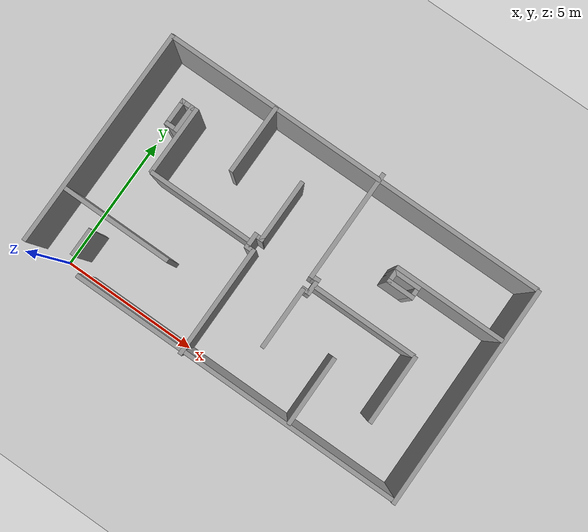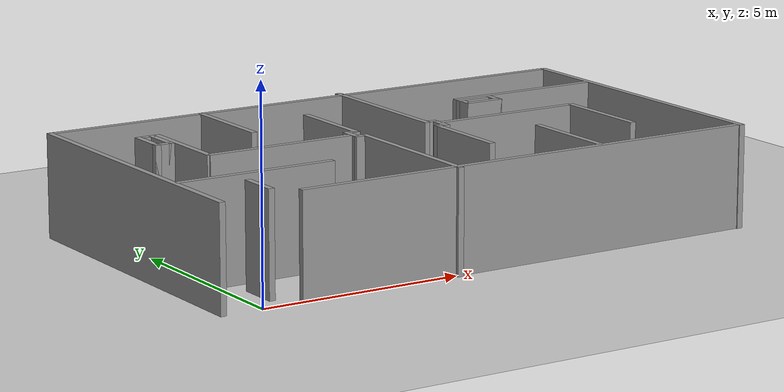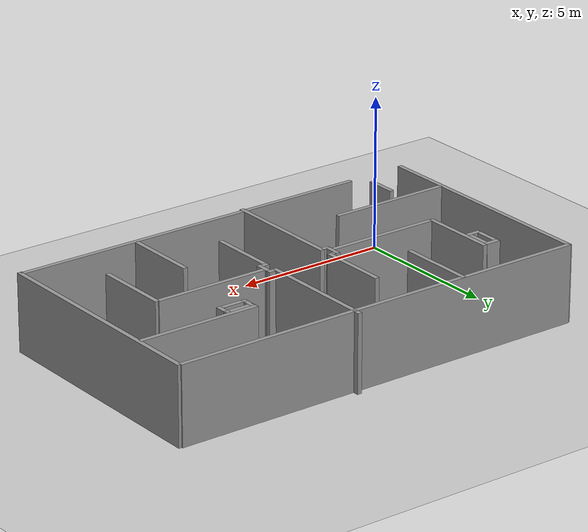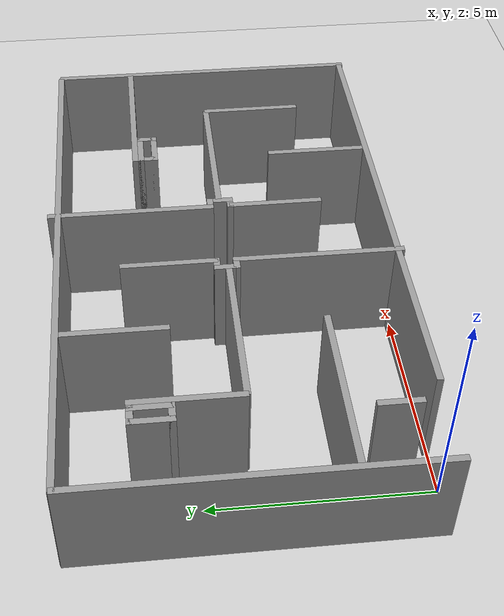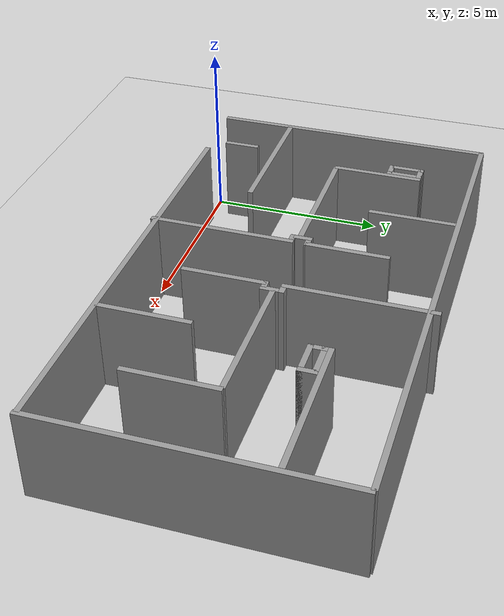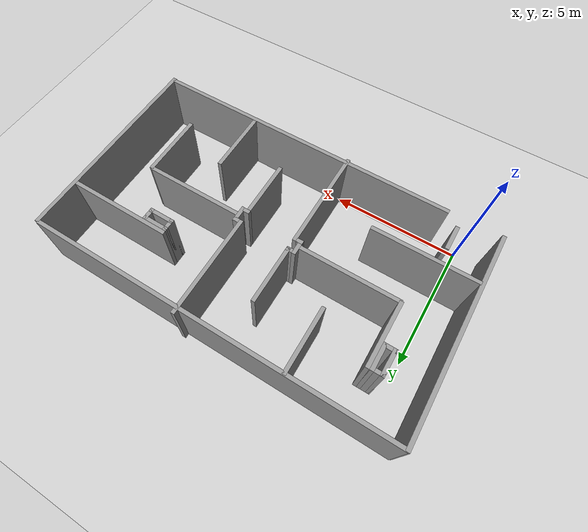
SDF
<sdf version="1.7">
 <world name="default">
  <light name="sun" type="directional">
   <pose>0 0 10 0 -0 0</pose>
   <diffuse>0.8 0.8 0.8 1</diffuse>
   <specular>0.2 0.2 0.2 1</specular>
   <attenuation>
    <range>1000</range>
    <constant>0.9</constant>
    <linear>0.01</linear>
    <quadratic>0.001</quadratic>
   </attenuation>
   <direction>-0.5 0.1 -0.9</direction>
   <spot><inner_angle>0</inner_angle><outer_angle>0</outer_angle><falloff>0</falloff></spot>
  </light>
  <model name="ground_plane">
   <static>1</static>
   <link name="link">
    <collision name="collision">
     <geometry><plane><normal>0 0 1</normal><size>100 100</size></plane></geometry>
     <surface>
      <contact><collide_bitmask>65535</collide_bitmask></contact>
      <friction><ode><mu>100</mu><mu2>50</mu2></ode></friction>
     </surface>
    </collision>
    <visual name="visual">
     <cast_shadows>0</cast_shadows>
     <geometry><plane><normal>0 0 1</normal><size>100 100</size></plane></geometry>
     <material>
      <script><uri>file://media/materials/scripts/gazebo.material</uri><name>Gazebo/Grey</name></script>
     </material>
    </visual>
   </link>
  </model>
  <gravity>0 0 -9.8</gravity>
  <magnetic_field>6e-06 2.3e-05 -4.2e-05</magnetic_field>
  <atmosphere type="adiabatic"/>
  <physics type="ode">
   <max_step_size>0.001</max_step_size>
   <real_time_factor>1</real_time_factor>
   <real_time_update_rate>1000</real_time_update_rate>
  </physics>
  <scene><ambient>0.4 0.4 0.4 1</ambient><background>0.7 0.7 0.7 1</background><shadows>1</shadows></scene>
  <spherical_coordinates>
   <surface_model>EARTH_WGS84</surface_model>
   <latitude_deg>0</latitude_deg>
   <longitude_deg>0</longitude_deg>
   <elevation>0</elevation>
   <heading_deg>0</heading_deg>
  </spherical_coordinates>
  <model name="myroom_long_start">
   <pose>6.00346 4.01651 0 0 -0 0</pose>
   <link name="Wall_0">
    <collision name="Wall_0_Collision">
     <geometry><box><size>12 0.15 2.5</size></box></geometry>
     <pose>0 0 1.25 0 -0 0</pose>
    </collision>
    <visual name="Wall_0_Visual">
     <pose>0 0 1.25 0 -0 0</pose>
     <geometry><box><size>12 0.15 2.5</size></box></geometry>
     <material>
      <script><uri>file://media/materials/scripts/gazebo.material</uri><name>Gazebo/Grey</name></script>
      <ambient>1 1 1 1</ambient>
     </material>
     <meta><layer>0</layer></meta>
    </visual>
    <pose>0.977061 -3.98139 0 0 -0 0</pose>
   </link>
   <link name="Wall_10">
    <collision name="Wall_10_Collision">
     <geometry><box><size>4 0.15 2.5</size></box></geometry>
     <pose>0 0 1.25 0 -0 0</pose>
    </collision>
    <visual name="Wall_10_Visual">
     <pose>0 0 1.25 0 -0 0</pose>
     <geometry><box><size>4 0.15 2.5</size></box></geometry>
     <material>
      <script><uri>file://media/materials/scripts/gazebo.material</uri><name>Gazebo/Grey</name></script>
      <ambient>1 1 1 1</ambient>
     </material>
     <meta><layer>0</layer></meta>
    </visual>
    <pose>-4.95933 -1.98457 0 0 -0 0</pose>
   </link>
   <link name="Wall_12">
    <collision name="Wall_12_Collision">
     <geometry><box><size>4 0.15 2.5</size></box></geometry>
     <pose>0 0 1.25 0 -0 0</pose>
    </collision>
    <visual name="Wall_12_Visual">
     <pose>0 0 1.25 0 -0 0</pose>
     <geometry><box><size>4 0.15 2.5</size></box></geometry>
     <material>
      <script><uri>file://media/materials/scripts/gazebo.material</uri><name>Gazebo/Grey</name></script>
      <ambient>1 1 1 1</ambient>
     </material>
     <meta><layer>0</layer></meta>
    </visual>
    <pose>-0.973865 -2.13486 0 0 -0 -1.5708</pose>
   </link>
   <link name="Wall_14">
    <collision name="Wall_14_Collision">
     <geometry><box><size>4 0.15 2.5</size></box></geometry>
     <pose>0 0 1.25 0 -0 0</pose>
    </collision>
    <visual name="Wall_14_Visual">
     <pose>0 0 1.25 0 -0 0</pose>
     <geometry><box><size>4 0.15 2.5</size></box></geometry>
     <material>
      <script><uri>file://media/materials/scripts/gazebo.material</uri><name>Gazebo/Grey</name></script>
      <ambient>1 1 1 1</ambient>
     </material>
     <meta><layer>0</layer></meta>
    </visual>
    <pose>0.96916 2.13485 0 0 -0 -1.5708</pose>
   </link>
   <link name="Wall_16">
    <collision name="Wall_16_Collision">
     <geometry><box><size>2.5 0.15 2.5</size></box></geometry>
     <pose>0 0 1.25 0 -0 0</pose>
    </collision>
    <visual name="Wall_16_Visual">
     <pose>0 0 1.25 0 -0 0</pose>
     <geometry><box><size>2.5 0.15 2.5</size></box></geometry>
     <material>
      <script><uri>file://media/materials/scripts/gazebo.material</uri><name>Gazebo/Grey</name></script>
      <ambient>1 1 1 1</ambient>
     </material>
     <meta><layer>0</layer></meta>
    </visual>
    <pose>-5.00955 1.19594 0 0 -0 -1.5708</pose>
   </link>
   <link name="Wall_18">
    <collision name="Wall_18_Collision">
     <geometry><box><size>2.5 0.15 2.5</size></box></geometry>
     <pose>0 0 1.25 0 -0 0</pose>
    </collision>
    <visual name="Wall_18_Visual">
     <pose>0 0 1.25 0 -0 0</pose>
     <geometry><box><size>2.5 0.15 2.5</size></box></geometry>
     <material>
      <script><uri>file://media/materials/scripts/gazebo.material</uri><name>Gazebo/Grey</name></script>
      <ambient>1 1 1 1</ambient>
     </material>
     <meta><layer>0</layer></meta>
    </visual>
    <pose>5.02045 -1.22406 0 0 -0 -1.5708</pose>
   </link>
   <link name="Wall_2">
    <collision name="Wall_2_Collision">
     <geometry><box><size>8 0.15 2.5</size></box></geometry>
     <pose>0 0 1.25 0 -0 0</pose>
    </collision>
    <visual name="Wall_2_Visual">
     <pose>0 0 1.25 0 -0 0</pose>
     <geometry><box><size>8 0.15 2.5</size></box></geometry>
     <material>
      <script><uri>file://media/materials/scripts/gazebo.material</uri><name>Gazebo/Grey</name></script>
      <ambient>1 1 1 1</ambient>
     </material>
     <meta><layer>0</layer></meta>
    </visual>
    <pose>-6.99952 -0.062096 0 0 -0 -1.5708</pose>
   </link>
   <link name="Wall_20">
    <collision name="Wall_20_Collision">
     <geometry><box><size>2.5 0.15 2.5</size></box></geometry>
     <pose>0 0 1.25 0 -0 0</pose>
    </collision>
    <visual name="Wall_20_Visual">
     <pose>0 0 1.25 0 -0 0</pose>
     <geometry><box><size>2.5 0.15 2.5</size></box></geometry>
     <material>
      <script><uri>file://media/materials/scripts/gazebo.material</uri><name>Gazebo/Grey</name></script>
      <ambient>1 1 1 1</ambient>
     </material>
     <meta><layer>0</layer></meta>
    </visual>
    <pose>-2.98955 2.67594 0 0 -0 -1.5708</pose>
   </link>
   <link name="Wall_22">
    <collision name="Wall_22_Collision">
     <geometry><box><size>2.5 0.15 2.5</size></box></geometry>
     <pose>0 0 1.25 0 -0 0</pose>
    </collision>
    <visual name="Wall_22_Visual">
     <pose>0 0 1.25 0 -0 0</pose>
     <geometry><box><size>2.5 0.15 2.5</size></box></geometry>
     <material>
      <script><uri>file://media/materials/scripts/gazebo.material</uri><name>Gazebo/Grey</name></script>
      <ambient>1 1 1 1</ambient>
     </material>
     <meta><layer>0</layer></meta>
    </visual>
    <pose>3.00045 -2.70406 0 0 -0 -1.5708</pose>
   </link>
   <link name="Wall_24">
    <collision name="Wall_24_Collision">
     <geometry><box><size>3.75 0.15 2.5</size></box></geometry>
     <pose>0 0 1.25 0 -0 0</pose>
    </collision>
    <visual name="Wall_24_Visual">
     <pose>0 0 1.25 0 -0 0</pose>
     <geometry><box><size>3.75 0.15 2.5</size></box></geometry>
     <material>
      <script><uri>file://media/materials/scripts/gazebo.material</uri><name>Gazebo/Grey</name></script>
      <ambient>1 1 1 1</ambient>
     </material>
     <meta><layer>0</layer></meta>
    </visual>
    <pose>-3.15343 -0.018496 0 0 -0 0</pose>
   </link>
   <link name="Wall_26">
    <collision name="Wall_26_Collision">
     <geometry><box><size>3.75 0.15 2.5</size></box></geometry>
     <pose>0 0 1.25 0 -0 0</pose>
    </collision>
    <visual name="Wall_26_Visual">
     <pose>0 0 1.25 0 -0 0</pose>
     <geometry><box><size>3.75 0.15 2.5</size></box></geometry>
     <material>
      <script><uri>file://media/materials/scripts/gazebo.material</uri><name>Gazebo/Grey</name></script>
      <ambient>1 1 1 1</ambient>
     </material>
     <meta><layer>0</layer></meta>
    </visual>
    <pose>3.11608 -0.008694 0 0 -0 0</pose>
   </link>
   <link name="Wall_28">
    <collision name="Wall_28_Collision">
     <geometry><box><size>2.25 0.15 2.5</size></box></geometry>
     <pose>0 0 1.25 0 -0 0</pose>
    </collision>
    <visual name="Wall_28_Visual">
     <pose>0 0 1.25 0 -0 0</pose>
     <geometry><box><size>2.25 0.15 2.5</size></box></geometry>
     <material>
      <script><uri>file://media/materials/scripts/gazebo.material</uri><name>Gazebo/Grey</name></script>
      <ambient>1 1 1 1</ambient>
     </material>
     <meta><layer>0</layer></meta>
    </visual>
    <pose>-0.964656 1.33168 0 0 -0 -1.5708</pose>
   </link>
   <link name="Wall_30">
    <collision name="Wall_30_Collision">
     <geometry><box><size>2.25 0.15 2.5</size></box></geometry>
     <pose>0 0 1.25 0 -0 0</pose>
    </collision>
    <visual name="Wall_30_Visual">
     <pose>0 0 1.25 0 -0 0</pose>
     <geometry><box><size>2.25 0.15 2.5</size></box></geometry>
     <material>
      <script><uri>file://media/materials/scripts/gazebo.material</uri><name>Gazebo/Grey</name></script>
      <ambient>1 1 1 1</ambient>
     </material>
     <meta><layer>0</layer></meta>
    </visual>
    <pose>0.986145 -1.37675 0 0 -0 -1.5708</pose>
   </link>
   <link name="Wall_32">
    <collision name="Wall_32_Collision">
     <geometry><box><size>0.25 0.15 2.5</size></box></geometry>
     <pose>0 0 1.25 0 -0 0</pose>
    </collision>
    <visual name="Wall_32_Visual">
     <pose>0 0 1.25 0 -0 0</pose>
     <geometry><box><size>0.25 0.15 2.5</size></box></geometry>
     <material>
      <script><uri>file://media/materials/scripts/gazebo.material</uri><name>Gazebo/Grey</name></script>
      <ambient>1 1 1 1</ambient>
     </material>
     <meta><layer>0</layer></meta>
    </visual>
    <pose>-1.15449 -0.210647 0 0 -0 0</pose>
   </link>
   <link name="Wall_34">
    <collision name="Wall_34_Collision">
     <geometry><box><size>0.5 0.15 2.5</size></box></geometry>
     <pose>0 0 1.25 0 -0 0</pose>
    </collision>
    <visual name="Wall_34_Visual">
     <pose>0 0 1.25 0 -0 0</pose>
     <geometry><box><size>0.5 0.15 2.5</size></box></geometry>
     <material>
      <script><uri>file://media/materials/scripts/gazebo.material</uri><name>Gazebo/Grey</name></script>
      <ambient>1 1 1 1</ambient>
     </material>
     <meta><layer>0</layer></meta>
    </visual>
    <pose>-1.20471 0.066247 0 0 -0 -1.5708</pose>
   </link>
   <link name="Wall_36">
    <collision name="Wall_36_Collision">
     <geometry><box><size>0.25 0.15 2.5</size></box></geometry>
     <pose>0 0 1.25 0 -0 0</pose>
    </collision>
    <visual name="Wall_36_Visual">
     <pose>0 0 1.25 0 -0 0</pose>
     <geometry><box><size>0.25 0.15 2.5</size></box></geometry>
     <material>
      <script><uri>file://media/materials/scripts/gazebo.material</uri><name>Gazebo/Grey</name></script>
      <ambient>1 1 1 1</ambient>
     </material>
     <meta><layer>0</layer></meta>
    </visual>
    <pose>-1.01476 0.240944 0 0 -0 0</pose>
   </link>
   <link name="Wall_38">
    <collision name="Wall_38_Collision">
     <geometry><box><size>0.25 0.15 2.5</size></box></geometry>
     <pose>0 0 1.25 0 -0 0</pose>
    </collision>
    <visual name="Wall_38_Visual">
     <pose>0 0 1.25 0 -0 0</pose>
     <geometry><box><size>0.25 0.15 2.5</size></box></geometry>
     <material>
      <script><uri>file://media/materials/scripts/gazebo.material</uri><name>Gazebo/Grey</name></script>
      <ambient>1 1 1 1</ambient>
     </material>
     <meta><layer>0</layer></meta>
    </visual>
    <pose>1.03485 -0.273698 0 0 -0 3.14159</pose>
   </link>
   <link name="Wall_4">
    <collision name="Wall_4_Collision">
     <geometry><box><size>14 0.15 2.5</size></box></geometry>
     <pose>0 0 1.25 0 -0 0</pose>
    </collision>
    <visual name="Wall_4_Visual">
     <pose>0 0 1.25 0 -0 0</pose>
     <geometry><box><size>14 0.15 2.5</size></box></geometry>
     <material>
      <script><uri>file://media/materials/scripts/gazebo.material</uri><name>Gazebo/Grey</name></script>
      <ambient>1 1 1 1</ambient>
     </material>
     <meta><layer>0</layer></meta>
    </visual>
    <pose>-0.026045 3.88302 0 0 -0 3.14159</pose>
   </link>
   <link name="Wall_40">
    <collision name="Wall_40_Collision">
     <geometry><box><size>0.5 0.15 2.5</size></box></geometry>
     <pose>0 0 1.25 0 -0 0</pose>
    </collision>
    <visual name="Wall_40_Visual">
     <pose>0 0 1.25 0 -0 0</pose>
     <geometry><box><size>0.5 0.15 2.5</size></box></geometry>
     <material>
      <script><uri>file://media/materials/scripts/gazebo.material</uri><name>Gazebo/Grey</name></script>
      <ambient>1 1 1 1</ambient>
     </material>
     <meta><layer>0</layer></meta>
    </visual>
    <pose>1.19315 -0.098997 0 0 -0 -1.5708</pose>
   </link>
   <link name="Wall_42">
    <collision name="Wall_42_Collision">
     <geometry><box><size>0.25 0.15 2.5</size></box></geometry>
     <pose>0 0 1.25 0 -0 0</pose>
    </collision>
    <visual name="Wall_42_Visual">
     <pose>0 0 1.25 0 -0 0</pose>
     <geometry><box><size>0.25 0.15 2.5</size></box></geometry>
     <material>
      <script><uri>file://media/materials/scripts/gazebo.material</uri><name>Gazebo/Grey</name></script>
      <ambient>1 1 1 1</ambient>
     </material>
     <meta><layer>0</layer></meta>
    </visual>
    <pose>1.14371 0.20938 0 0 -0 0</pose>
   </link>
   <link name="Wall_6">
    <collision name="Wall_6_Collision">
     <geometry><box><size>8 0.15 2.5</size></box></geometry>
     <pose>0 0 1.25 0 -0 0</pose>
    </collision>
    <visual name="Wall_6_Visual">
     <pose>0 0 1.25 0 -0 0</pose>
     <geometry><box><size>8 0.15 2.5</size></box></geometry>
     <material>
      <script><uri>file://media/materials/scripts/gazebo.material</uri><name>Gazebo/Grey</name></script>
      <ambient>1 1 1 1</ambient>
     </material>
     <meta><layer>0</layer></meta>
    </visual>
    <pose>6.99952 -0.08221 0 0 -0 -1.5708</pose>
   </link>
   <link name="Wall_8">
    <collision name="Wall_8_Collision">
     <geometry><box><size>4 0.15 2.5</size></box></geometry>
     <pose>0 0 1.25 0 -0 0</pose>
    </collision>
    <visual name="Wall_8_Visual">
     <pose>0 0 1.25 0 -0 0</pose>
     <geometry><box><size>4 0.15 2.5</size></box></geometry>
     <material>
      <script><uri>file://media/materials/scripts/gazebo.material</uri><name>Gazebo/Grey</name></script>
      <ambient>1 1 1 1</ambient>
     </material>
     <meta><layer>0</layer></meta>
    </visual>
    <pose>4.95677 1.9545 0 0 -0 0</pose>
   </link>
   <static>1</static>
  </model>
  <model name="half_wall">
   <pose>0.67196 6.91648 0 0 -0 0</pose>
   <link name="Wall_0">
    <collision name="Wall_0_Collision">
     <geometry><box><size>1 0.15 2.5</size></box></geometry>
     <pose>0 0 1.25 0 -0 0</pose>
    </collision>
    <visual name="Wall_0_Visual">
     <pose>0 0 1.25 0 -0 0</pose>
     <geometry><box><size>1 0.15 2.5</size></box></geometry>
     <material>
      <script><uri>file://media/materials/scripts/gazebo.material</uri><name>Gazebo/Grey</name></script>
      <ambient>1 1 1 1</ambient>
     </material>
     <meta><layer>0</layer></meta>
    </visual>
    <pose>-0.175 -0.9541 0 0 -0 1.5708</pose>
   </link>
   <link name="Wall_1">
    <collision name="Wall_1_Collision">
     <geometry><box><size>0.5 0.15 2.5</size></box></geometry>
     <pose>0 0 1.25 0 -0 0</pose>
    </collision>
    <visual name="Wall_1_Visual">
     <pose>0 0 1.25 0 -0 0</pose>
     <geometry><box><size>0.5 0.15 2.5</size></box></geometry>
     <material>
      <script><uri>file://media/materials/scripts/gazebo.material</uri><name>Gazebo/Grey</name></script>
      <ambient>1 1 1 1</ambient>
     </material>
     <meta><layer>0</layer></meta>
    </visual>
    <pose>0 -0.5291 0 0 -0 0</pose>
   </link>
   <link name="Wall_2">
    <collision name="Wall_2_Collision">
     <geometry><box><size>1 0.15 2.5</size></box></geometry>
     <pose>0 0 1.25 0 -0 0</pose>
    </collision>
    <visual name="Wall_2_Visual">
     <pose>0 0 1.25 0 -0 0</pose>
     <geometry><box><size>1 0.15 2.5</size></box></geometry>
     <material>
      <script><uri>file://media/materials/scripts/gazebo.material</uri><name>Gazebo/Grey</name></script>
      <ambient>1 1 1 1</ambient>
     </material>
     <meta><layer>0</layer></meta>
    </visual>
    <pose>0.175 -0.9541 0 0 -0 -1.5708</pose>
   </link>
   <link name="Wall_3">
    <collision name="Wall_3_Collision">
     <geometry><box><size>0.5 0.15 2.5</size></box></geometry>
     <pose>0 0 1.25 0 -0 0</pose>
    </collision>
    <visual name="Wall_3_Visual">
     <pose>0 0 1.25 0 -0 0</pose>
     <geometry><box><size>0.5 0.15 2.5</size></box></geometry>
     <material>
      <script><uri>file://media/materials/scripts/gazebo.material</uri><name>Gazebo/Grey</name></script>
      <ambient>1 1 1 1</ambient>
     </material>
     <meta><layer>0</layer></meta>
    </visual>
    <pose>0 -1.3791 0 0 -0 3.14159</pose>
   </link>
   <static>1</static>
  </model>
  <model name="half_wall_0">
   <pose>8.50621 5.64751 0 0 -0 1.57113</pose>
   <link name="Wall_0">
    <collision name="Wall_0_Collision">
     <geometry><box><size>1 0.15 2.5</size></box></geometry>
     <pose>0 0 1.25 0 -0 0</pose>
    </collision>
    <visual name="Wall_0_Visual">
     <pose>0 0 1.25 0 -0 0</pose>
     <geometry><box><size>1 0.15 2.5</size></box></geometry>
     <material>
      <script><uri>file://media/materials/scripts/gazebo.material</uri><name>Gazebo/Grey</name></script>
      <ambient>1 1 1 1</ambient>
     </material>
     <meta><layer>0</layer></meta>
    </visual>
    <pose>-0.175 -0.9541 0 0 -0 1.5708</pose>
   </link>
   <link name="Wall_1">
    <collision name="Wall_1_Collision">
     <geometry><box><size>0.5 0.15 2.5</size></box></geometry>
     <pose>0 0 1.25 0 -0 0</pose>
    </collision>
    <visual name="Wall_1_Visual">
     <pose>0 0 1.25 0 -0 0</pose>
     <geometry><box><size>0.5 0.15 2.5</size></box></geometry>
     <material>
      <script><uri>file://media/materials/scripts/gazebo.material</uri><name>Gazebo/Grey</name></script>
      <ambient>1 1 1 1</ambient>
     </material>
     <meta><layer>0</layer></meta>
    </visual>
    <pose>0 -0.5291 0 0 -0 0</pose>
   </link>
   <link name="Wall_2">
    <collision name="Wall_2_Collision">
     <geometry><box><size>1 0.15 2.5</size></box></geometry>
     <pose>0 0 1.25 0 -0 0</pose>
    </collision>
    <visual name="Wall_2_Visual">
     <pose>0 0 1.25 0 -0 0</pose>
     <geometry><box><size>1 0.15 2.5</size></box></geometry>
     <material>
      <script><uri>file://media/materials/scripts/gazebo.material</uri><name>Gazebo/Grey</name></script>
      <ambient>1 1 1 1</ambient>
     </material>
     <meta><layer>0</layer></meta>
    </visual>
    <pose>0.175 -0.9541 0 0 -0 -1.5708</pose>
   </link>
   <link name="Wall_3">
    <collision name="Wall_3_Collision">
     <geometry><box><size>0.5 0.15 2.5</size></box></geometry>
     <pose>0 0 1.25 0 -0 0</pose>
    </collision>
    <visual name="Wall_3_Visual">
     <pose>0 0 1.25 0 -0 0</pose>
     <geometry><box><size>0.5 0.15 2.5</size></box></geometry>
     <material>
      <script><uri>file://media/materials/scripts/gazebo.material</uri><name>Gazebo/Grey</name></script>
      <ambient>1 1 1 1</ambient>
     </material>
     <meta><layer>0</layer></meta>
    </visual>
    <pose>0 -1.3791 0 0 -0 3.14159</pose>
   </link>
   <static>1</static>
  </model>
  <model name="branch_pillar">
   <pose>0.5 0.95 0 0 -0 0</pose>
   <link name="Wall_0">
    <collision name="Wall_0_Collision">
     <geometry><box><size>1 0.15 2.5</size></box></geometry>
     <pose>0 0 1.25 0 -0 0</pose>
    </collision>
    <visual name="Wall_0_Visual">
     <pose>0 0 1.25 0 -0 0</pose>
     <geometry><box><size>1 0.15 2.5</size></box></geometry>
     <material>
      <script><uri>file://media/materials/scripts/gazebo.material</uri><name>Gazebo/Grey</name></script>
      <ambient>1 1 1 1</ambient>
     </material>
     <meta><layer>0</layer></meta>
    </visual>
    <pose>0 0 0 0 -0 -1.5708</pose>
   </link>
   <static>1</static>
  </model>
 </world>
</sdf>
